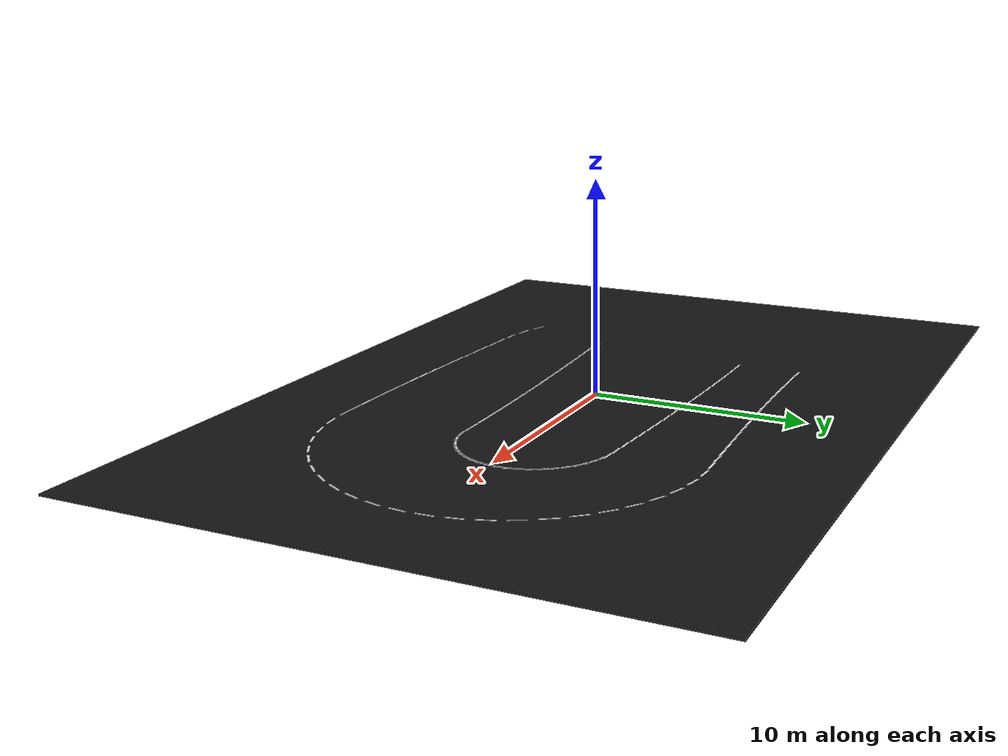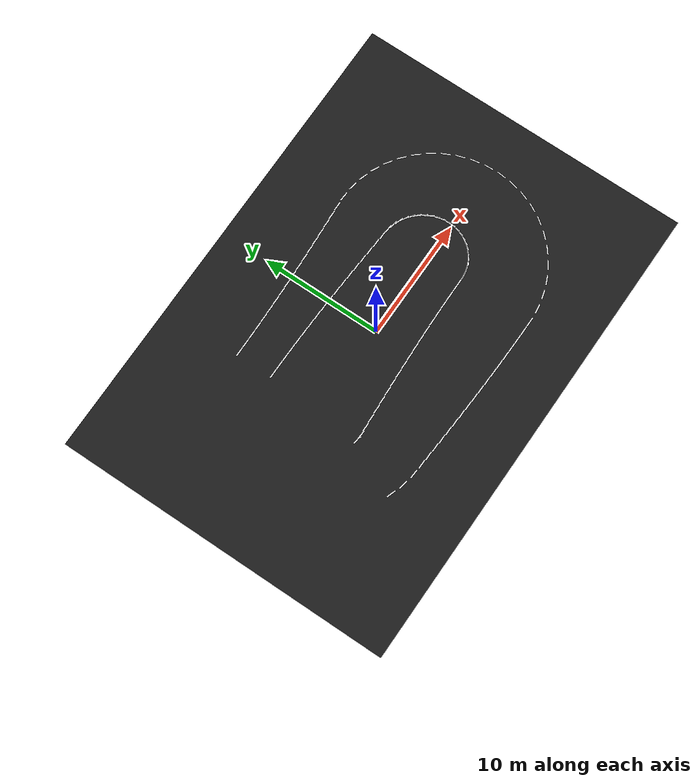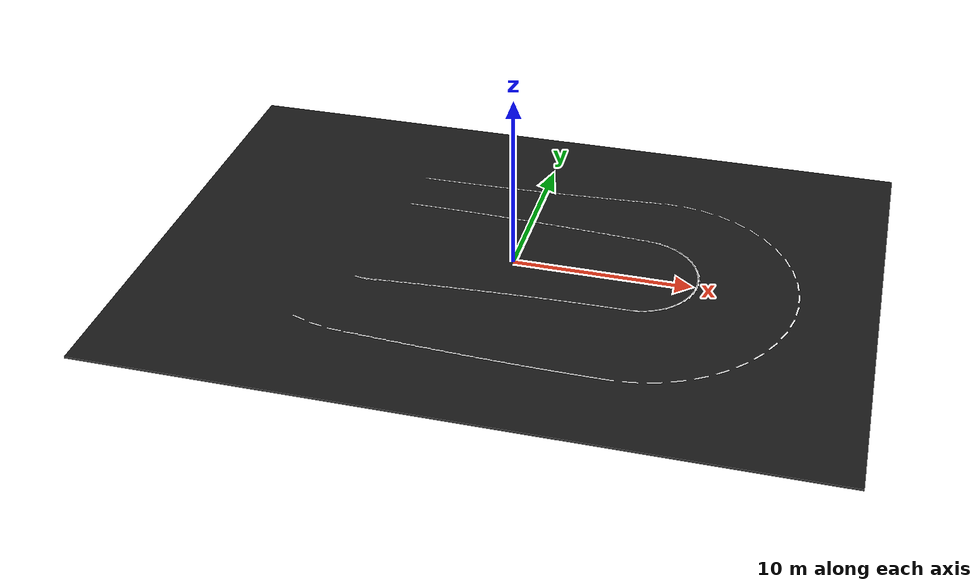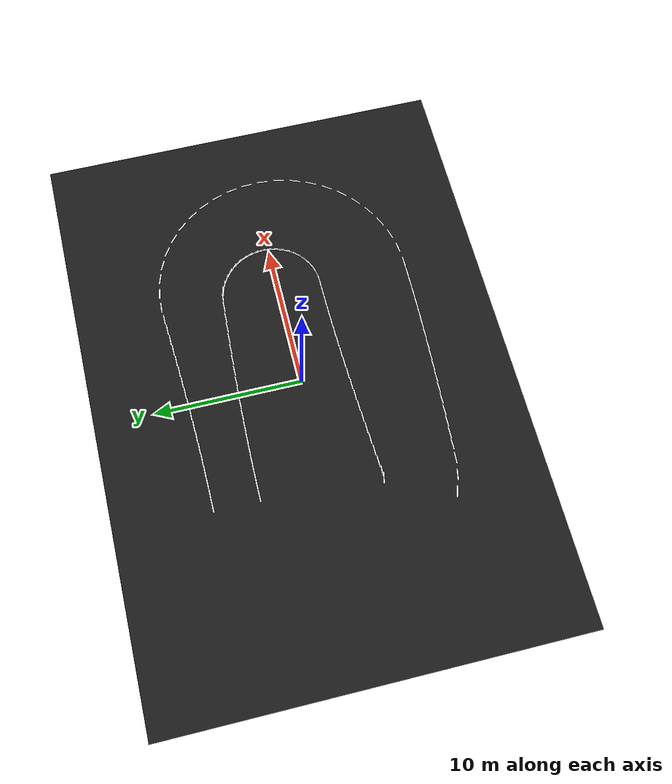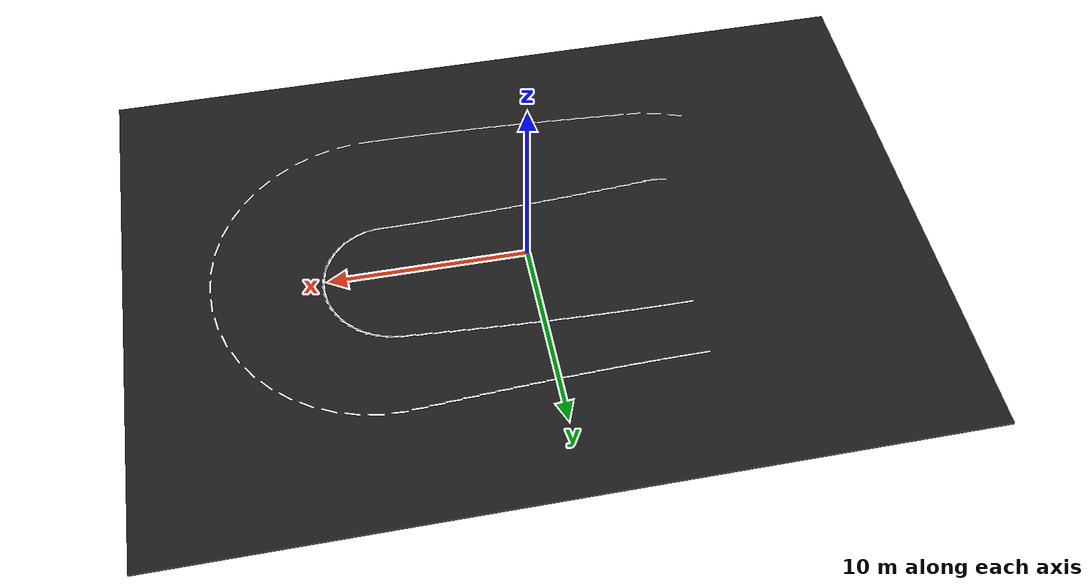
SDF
<sdf version="1.9">
 <world name="test_world_lane_vary">
  <physics name="1ms" type="ignored">
   <max_step_size>0.001</max_step_size>
   <real_time_factor>1.0</real_time_factor>
  </physics>
  <plugin filename="libgz-sim8-physics-system.so" name="gz::sim::systems::Physics"/>
  <plugin filename="gz-sim-sensors-system" name="gz::sim::systems::Sensors"/>
  <plugin filename="libgz-sim8-scene-broadcaster-system.so" name="gz::sim::systems::SceneBroadcaster"/>
  <include><uri>https://fuel.gazebosim.org/1.0/openrobotics/models/Sun</uri></include>
  <model name="oval_track_small">
   <static>true</static>
   <link name="track_link">
    <collision name="track_collision">
     <pose>0 0 -0.05 0 0 0</pose>
     <geometry><box><size>40 28 0.10</size></box></geometry>
     <surface><friction><ode><mu>1.2</mu><mu2>1.2</mu2></ode></friction></surface>
    </collision>
    <visual name="track_visual">
     <pose>0 0 -0.05 0 0 0</pose>
     <geometry><box><size>40 28 0.10</size></box></geometry>
     <material>
      <ambient>0.08 0.08 0.08 1</ambient>
      <diffuse>0.10 0.10 0.10 1</diffuse>
      <specular>0.02 0.02 0.02 1</specular>
     </material>
    </visual>
    <visual name="outer_lane_000">
     <pose>-7.0000 7.5240 0.0010 0 0 0.000000</pose>
     <geometry><box><size>0.8000 0.1000 0.0050</size></box></geometry>
     <material><ambient>1 1 1 1</ambient><diffuse>1 1 1 1</diffuse><specular>0.1 0.1 0.1 1</specular></material>
    </visual>
    <visual name="inner_lane_000">
     <pose>-7.0000 4.4760 0.0010 0 0 0.000000</pose>
     <geometry><box><size>0.8000 0.1000 0.0050</size></box></geometry>
     <material><ambient>1 1 1 1</ambient><diffuse>1 1 1 1</diffuse><specular>0.1 0.1 0.1 1</specular></material>
    </visual>
    <visual name="outer_lane_001">
     <pose>-6.2000 7.5262 0.0010 0 0 0.000000</pose>
     <geometry><box><size>0.8000 0.1000 0.0050</size></box></geometry>
     <material><ambient>1 1 1 1</ambient><diffuse>1 1 1 1</diffuse><specular>0.1 0.1 0.1 1</specular></material>
    </visual>
    <visual name="inner_lane_001">
     <pose>-6.2000 4.4738 0.0010 0 0 0.000000</pose>
     <geometry><box><size>0.8000 0.1000 0.0050</size></box></geometry>
     <material><ambient>1 1 1 1</ambient><diffuse>1 1 1 1</diffuse><specular>0.1 0.1 0.1 1</specular></material>
    </visual>
    <visual name="outer_lane_002">
     <pose>-5.4000 7.5329 0.0010 0 0 0.000000</pose>
     <geometry><box><size>0.8000 0.1000 0.0050</size></box></geometry>
     <material><ambient>1 1 1 1</ambient><diffuse>1 1 1 1</diffuse><specular>0.1 0.1 0.1 1</specular></material>
    </visual>
    <visual name="inner_lane_002">
     <pose>-5.4000 4.4671 0.0010 0 0 0.000000</pose>
     <geometry><box><size>0.8000 0.1000 0.0050</size></box></geometry>
     <material><ambient>1 1 1 1</ambient><diffuse>1 1 1 1</diffuse><specular>0.1 0.1 0.1 1</specular></material>
    </visual>
    <visual name="outer_lane_003">
     <pose>-4.6000 7.5440 0.0010 0 0 0.000000</pose>
     <geometry><box><size>0.8000 0.1000 0.0050</size></box></geometry>
     <material><ambient>1 1 1 1</ambient><diffuse>1 1 1 1</diffuse><specular>0.1 0.1 0.1 1</specular></material>
    </visual>
    <visual name="inner_lane_003">
     <pose>-4.6000 4.4560 0.0010 0 0 0.000000</pose>
     <geometry><box><size>0.8000 0.1000 0.0050</size></box></geometry>
     <material><ambient>1 1 1 1</ambient><diffuse>1 1 1 1</diffuse><specular>0.1 0.1 0.1 1</specular></material>
    </visual>
    <visual name="outer_lane_004">
     <pose>-3.8000 7.5594 0.0010 0 0 0.000000</pose>
     <geometry><box><size>0.8000 0.1000 0.0050</size></box></geometry>
     <material><ambient>1 1 1 1</ambient><diffuse>1 1 1 1</diffuse><specular>0.1 0.1 0.1 1</specular></material>
    </visual>
    <visual name="inner_lane_004">
     <pose>-3.8000 4.4406 0.0010 0 0 0.000000</pose>
     <geometry><box><size>0.8000 0.1000 0.0050</size></box></geometry>
     <material><ambient>1 1 1 1</ambient><diffuse>1 1 1 1</diffuse><specular>0.1 0.1 0.1 1</specular></material>
    </visual>
    <visual name="outer_lane_005">
     <pose>-3.0000 7.5791 0.0010 0 0 0.000000</pose>
     <geometry><box><size>0.8000 0.1000 0.0050</size></box></geometry>
     <material><ambient>1 1 1 1</ambient><diffuse>1 1 1 1</diffuse><specular>0.1 0.1 0.1 1</specular></material>
    </visual>
    <visual name="inner_lane_005">
     <pose>-3.0000 4.4209 0.0010 0 0 0.000000</pose>
     <geometry><box><size>0.8000 0.1000 0.0050</size></box></geometry>
     <material><ambient>1 1 1 1</ambient><diffuse>1 1 1 1</diffuse><specular>0.1 0.1 0.1 1</specular></material>
    </visual>
    <visual name="outer_lane_006">
     <pose>-2.2000 7.6029 0.0010 0 0 0.000000</pose>
     <geometry><box><size>0.8000 0.1000 0.0050</size></box></geometry>
     <material><ambient>1 1 1 1</ambient><diffuse>1 1 1 1</diffuse><specular>0.1 0.1 0.1 1</specular></material>
    </visual>
    <visual name="inner_lane_006">
     <pose>-2.2000 4.3971 0.0010 0 0 0.000000</pose>
     <geometry><box><size>0.8000 0.1000 0.0050</size></box></geometry>
     <material><ambient>1 1 1 1</ambient><diffuse>1 1 1 1</diffuse><specular>0.1 0.1 0.1 1</specular></material>
    </visual>
    <visual name="outer_lane_007">
     <pose>-1.4000 7.6307 0.0010 0 0 0.000000</pose>
     <geometry><box><size>0.8000 0.1000 0.0050</size></box></geometry>
     <material><ambient>1 1 1 1</ambient><diffuse>1 1 1 1</diffuse><specular>0.1 0.1 0.1 1</specular></material>
    </visual>
    <visual name="inner_lane_007">
     <pose>-1.4000 4.3693 0.0010 0 0 0.000000</pose>
     <geometry><box><size>0.8000 0.1000 0.0050</size></box></geometry>
     <material><ambient>1 1 1 1</ambient><diffuse>1 1 1 1</diffuse><specular>0.1 0.1 0.1 1</specular></material>
    </visual>
    <visual name="outer_lane_008">
     <pose>-0.6000 7.6623 0.0010 0 0 0.000000</pose>
     <geometry><box><size>0.8000 0.1000 0.0050</size></box></geometry>
     <material><ambient>1 1 1 1</ambient><diffuse>1 1 1 1</diffuse><specular>0.1 0.1 0.1 1</specular></material>
    </visual>
    <visual name="inner_lane_008">
     <pose>-0.6000 4.3377 0.0010 0 0 0.000000</pose>
     <geometry><box><size>0.8000 0.1000 0.0050</size></box></geometry>
     <material><ambient>1 1 1 1</ambient><diffuse>1 1 1 1</diffuse><specular>0.1 0.1 0.1 1</specular></material>
    </visual>
    <visual name="outer_lane_009">
     <pose>0.2000 7.6976 0.0010 0 0 0.000000</pose>
     <geometry><box><size>0.8000 0.1000 0.0050</size></box></geometry>
     <material><ambient>1 1 1 1</ambient><diffuse>1 1 1 1</diffuse><specular>0.1 0.1 0.1 1</specular></material>
    </visual>
    <visual name="inner_lane_009">
     <pose>0.2000 4.3024 0.0010 0 0 0.000000</pose>
     <geometry><box><size>0.8000 0.1000 0.0050</size></box></geometry>
     <material><ambient>1 1 1 1</ambient><diffuse>1 1 1 1</diffuse><specular>0.1 0.1 0.1 1</specular></material>
    </visual>
    <visual name="outer_lane_010">
     <pose>1.0000 7.7364 0.0010 0 0 0.000000</pose>
     <geometry><box><size>0.8000 0.1000 0.0050</size></box></geometry>
     <material><ambient>1 1 1 1</ambient><diffuse>1 1 1 1</diffuse><specular>0.1 0.1 0.1 1</specular></material>
    </visual>
    <visual name="inner_lane_010">
     <pose>1.0000 4.2636 0.0010 0 0 0.000000</pose>
     <geometry><box><size>0.8000 0.1000 0.0050</size></box></geometry>
     <material><ambient>1 1 1 1</ambient><diffuse>1 1 1 1</diffuse><specular>0.1 0.1 0.1 1</specular></material>
    </visual>
    <visual name="outer_lane_011">
     <pose>1.8000 7.7783 0.0010 0 0 0.000000</pose>
     <geometry><box><size>0.8000 0.1000 0.0050</size></box></geometry>
     <material><ambient>1 1 1 1</ambient><diffuse>1 1 1 1</diffuse><specular>0.1 0.1 0.1 1</specular></material>
    </visual>
    <visual name="inner_lane_011">
     <pose>1.8000 4.2217 0.0010 0 0 0.000000</pose>
     <geometry><box><size>0.8000 0.1000 0.0050</size></box></geometry>
     <material><ambient>1 1 1 1</ambient><diffuse>1 1 1 1</diffuse><specular>0.1 0.1 0.1 1</specular></material>
    </visual>
    <visual name="outer_lane_012">
     <pose>2.6000 7.8232 0.0010 0 0 0.000000</pose>
     <geometry><box><size>0.8000 0.1000 0.0050</size></box></geometry>
     <material><ambient>1 1 1 1</ambient><diffuse>1 1 1 1</diffuse><specular>0.1 0.1 0.1 1</specular></material>
    </visual>
    <visual name="inner_lane_012">
     <pose>2.6000 4.1768 0.0010 0 0 0.000000</pose>
     <geometry><box><size>0.8000 0.1000 0.0050</size></box></geometry>
     <material><ambient>1 1 1 1</ambient><diffuse>1 1 1 1</diffuse><specular>0.1 0.1 0.1 1</specular></material>
    </visual>
    <visual name="outer_lane_013">
     <pose>3.4000 7.8708 0.0010 0 0 0.000000</pose>
     <geometry><box><size>0.8000 0.1000 0.0050</size></box></geometry>
     <material><ambient>1 1 1 1</ambient><diffuse>1 1 1 1</diffuse><specular>0.1 0.1 0.1 1</specular></material>
    </visual>
    <visual name="inner_lane_013">
     <pose>3.4000 4.1292 0.0010 0 0 0.000000</pose>
     <geometry><box><size>0.8000 0.1000 0.0050</size></box></geometry>
     <material><ambient>1 1 1 1</ambient><diffuse>1 1 1 1</diffuse><specular>0.1 0.1 0.1 1</specular></material>
    </visual>
    <visual name="outer_lane_014">
     <pose>4.2000 7.9209 0.0010 0 0 0.000000</pose>
     <geometry><box><size>0.8000 0.1000 0.0050</size></box></geometry>
     <material><ambient>1 1 1 1</ambient><diffuse>1 1 1 1</diffuse><specular>0.1 0.1 0.1 1</specular></material>
    </visual>
    <visual name="inner_lane_014">
     <pose>4.2000 4.0791 0.0010 0 0 0.000000</pose>
     <geometry><box><size>0.8000 0.1000 0.0050</size></box></geometry>
     <material><ambient>1 1 1 1</ambient><diffuse>1 1 1 1</diffuse><specular>0.1 0.1 0.1 1</specular></material>
    </visual>
    <visual name="outer_lane_015">
     <pose>5.0000 7.9731 0.0010 0 0 0.000000</pose>
     <geometry><box><size>0.8000 0.1000 0.0050</size></box></geometry>
     <material><ambient>1 1 1 1</ambient><diffuse>1 1 1 1</diffuse><specular>0.1 0.1 0.1 1</specular></material>
    </visual>
    <visual name="inner_lane_015">
     <pose>5.0000 4.0269 0.0010 0 0 0.000000</pose>
     <geometry><box><size>0.8000 0.1000 0.0050</size></box></geometry>
     <material><ambient>1 1 1 1</ambient><diffuse>1 1 1 1</diffuse><specular>0.1 0.1 0.1 1</specular></material>
    </visual>
    <visual name="outer_lane_016">
     <pose>5.8000 8.0271 0.0010 0 0 0.000000</pose>
     <geometry><box><size>0.8000 0.1000 0.0050</size></box></geometry>
     <material><ambient>1 1 1 1</ambient><diffuse>1 1 1 1</diffuse><specular>0.1 0.1 0.1 1</specular></material>
    </visual>
    <visual name="inner_lane_016">
     <pose>5.8000 3.9729 0.0010 0 0 0.000000</pose>
     <geometry><box><size>0.8000 0.1000 0.0050</size></box></geometry>
     <material><ambient>1 1 1 1</ambient><diffuse>1 1 1 1</diffuse><specular>0.1 0.1 0.1 1</specular></material>
    </visual>
    <visual name="outer_lane_017">
     <pose>6.6000 8.0826 0.0010 0 0 0.000000</pose>
     <geometry><box><size>0.8000 0.1000 0.0050</size></box></geometry>
     <material><ambient>1 1 1 1</ambient><diffuse>1 1 1 1</diffuse><specular>0.1 0.1 0.1 1</specular></material>
    </visual>
    <visual name="inner_lane_017">
     <pose>6.6000 3.9174 0.0010 0 0 0.000000</pose>
     <geometry><box><size>0.8000 0.1000 0.0050</size></box></geometry>
     <material><ambient>1 1 1 1</ambient><diffuse>1 1 1 1</diffuse><specular>0.1 0.1 0.1 1</specular></material>
    </visual>
    <visual name="outer_lane_018">
     <pose>7.5422 8.1213 0.0010 0 0 -0.066667</pose>
     <geometry><box><size>0.8000 0.1000 0.0050</size></box></geometry>
     <material><ambient>1 1 1 1</ambient><diffuse>1 1 1 1</diffuse><specular>0.1 0.1 0.1 1</specular></material>
    </visual>
    <visual name="inner_lane_018">
     <pose>7.2572 3.8521 0.0010 0 0 -0.066667</pose>
     <geometry><box><size>0.8000 0.1000 0.0050</size></box></geometry>
     <material><ambient>1 1 1 1</ambient><diffuse>1 1 1 1</diffuse><specular>0.1 0.1 0.1 1</specular></material>
    </visual>
    <visual name="outer_lane_019">
     <pose>8.6285 8.0336 0.0010 0 0 -0.200000</pose>
     <geometry><box><size>0.8000 0.1000 0.0050</size></box></geometry>
     <material><ambient>1 1 1 1</ambient><diffuse>1 1 1 1</diffuse><specular>0.1 0.1 0.1 1</specular></material>
    </visual>
    <visual name="inner_lane_019">
     <pose>7.7555 3.7272 0.0010 0 0 -0.200000</pose>
     <geometry><box><size>0.8000 0.1000 0.0050</size></box></geometry>
     <material><ambient>1 1 1 1</ambient><diffuse>1 1 1 1</diffuse><specular>0.1 0.1 0.1 1</specular></material>
    </visual>
    <visual name="outer_lane_020">
     <pose>9.7010 7.8007 0.0010 0 0 -0.333333</pose>
     <geometry><box><size>0.8000 0.1000 0.0050</size></box></geometry>
     <material><ambient>1 1 1 1</ambient><diffuse>1 1 1 1</diffuse><specular>0.1 0.1 0.1 1</specular></material>
    </visual>
    <visual name="inner_lane_020">
     <pose>8.2253 3.5388 0.0010 0 0 -0.333333</pose>
     <geometry><box><size>0.8000 0.1000 0.0050</size></box></geometry>
     <material><ambient>1 1 1 1</ambient><diffuse>1 1 1 1</diffuse><specular>0.1 0.1 0.1 1</specular></material>
    </visual>
    <visual name="outer_lane_021">
     <pose>10.7403 7.4244 0.0010 0 0 -0.466667</pose>
     <geometry><box><size>0.8000 0.1000 0.0050</size></box></geometry>
     <material><ambient>1 1 1 1</ambient><diffuse>1 1 1 1</diffuse><specular>0.1 0.1 0.1 1</specular></material>
    </visual>
    <visual name="inner_lane_021">
     <pose>8.6587 3.2925 0.0010 0 0 -0.466667</pose>
     <geometry><box><size>0.8000 0.1000 0.0050</size></box></geometry>
     <material><ambient>1 1 1 1</ambient><diffuse>1 1 1 1</diffuse><specular>0.1 0.1 0.1 1</specular></material>
    </visual>
    <visual name="outer_lane_022">
     <pose>11.7269 6.9093 0.0010 0 0 -0.600000</pose>
     <geometry><box><size>0.8000 0.1000 0.0050</size></box></geometry>
     <material><ambient>1 1 1 1</ambient><diffuse>1 1 1 1</diffuse><specular>0.1 0.1 0.1 1</specular></material>
    </visual>
    <visual name="inner_lane_022">
     <pose>9.0488 2.9948 0.0010 0 0 -0.600000</pose>
     <geometry><box><size>0.8000 0.1000 0.0050</size></box></geometry>
     <material><ambient>1 1 1 1</ambient><diffuse>1 1 1 1</diffuse><specular>0.1 0.1 0.1 1</specular></material>
    </visual>
    <visual name="outer_lane_023">
     <pose>12.6420 6.2624 0.0010 0 0 -0.733333</pose>
     <geometry><box><size>0.8000 0.1000 0.0050</size></box></geometry>
     <material><ambient>1 1 1 1</ambient><diffuse>1 1 1 1</diffuse><specular>0.1 0.1 0.1 1</specular></material>
    </visual>
    <visual name="inner_lane_023">
     <pose>9.3902 2.6530 0.0010 0 0 -0.733333</pose>
     <geometry><box><size>0.8000 0.1000 0.0050</size></box></geometry>
     <material><ambient>1 1 1 1</ambient><diffuse>1 1 1 1</diffuse><specular>0.1 0.1 0.1 1</specular></material>
    </visual>
    <visual name="outer_lane_024">
     <pose>13.4677 5.4935 0.0010 0 0 -0.866667</pose>
     <geometry><box><size>0.8000 0.1000 0.0050</size></box></geometry>
     <material><ambient>1 1 1 1</ambient><diffuse>1 1 1 1</diffuse><specular>0.1 0.1 0.1 1</specular></material>
    </visual>
    <visual name="inner_lane_024">
     <pose>9.6784 2.2749 0.0010 0 0 -0.866667</pose>
     <geometry><box><size>0.8000 0.1000 0.0050</size></box></geometry>
     <material><ambient>1 1 1 1</ambient><diffuse>1 1 1 1</diffuse><specular>0.1 0.1 0.1 1</specular></material>
    </visual>
    <visual name="outer_lane_025">
     <pose>14.1874 4.6150 0.0010 0 0 -1.000000</pose>
     <geometry><box><size>0.8000 0.1000 0.0050</size></box></geometry>
     <material><ambient>1 1 1 1</ambient><diffuse>1 1 1 1</diffuse><specular>0.1 0.1 0.1 1</specular></material>
    </visual>
    <visual name="inner_lane_025">
     <pose>9.9102 1.8686 0.0010 0 0 -1.000000</pose>
     <geometry><box><size>0.8000 0.1000 0.0050</size></box></geometry>
     <material><ambient>1 1 1 1</ambient><diffuse>1 1 1 1</diffuse><specular>0.1 0.1 0.1 1</specular></material>
    </visual>
    <visual name="outer_lane_026">
     <pose>14.7862 3.6415 0.0010 0 0 -1.133333</pose>
     <geometry><box><size>0.8000 0.1000 0.0050</size></box></geometry>
     <material><ambient>1 1 1 1</ambient><diffuse>1 1 1 1</diffuse><specular>0.1 0.1 0.1 1</specular></material>
    </visual>
    <visual name="inner_lane_026">
     <pose>10.0838 1.4422 0.0010 0 0 -1.133333</pose>
     <geometry><box><size>0.8000 0.1000 0.0050</size></box></geometry>
     <material><ambient>1 1 1 1</ambient><diffuse>1 1 1 1</diffuse><specular>0.1 0.1 0.1 1</specular></material>
    </visual>
    <visual name="outer_lane_027">
     <pose>15.2511 2.5897 0.0010 0 0 -1.266667</pose>
     <geometry><box><size>0.8000 0.1000 0.0050</size></box></geometry>
     <material><ambient>1 1 1 1</ambient><diffuse>1 1 1 1</diffuse><specular>0.1 0.1 0.1 1</specular></material>
    </visual>
    <visual name="inner_lane_027">
     <pose>10.1982 1.0038 0.0010 0 0 -1.266667</pose>
     <geometry><box><size>0.8000 0.1000 0.0050</size></box></geometry>
     <material><ambient>1 1 1 1</ambient><diffuse>1 1 1 1</diffuse><specular>0.1 0.1 0.1 1</specular></material>
    </visual>
    <visual name="outer_lane_028">
     <pose>15.5716 1.4784 0.0010 0 0 -1.400000</pose>
     <geometry><box><size>0.8000 0.1000 0.0050</size></box></geometry>
     <material><ambient>1 1 1 1</ambient><diffuse>1 1 1 1</diffuse><specular>0.1 0.1 0.1 1</specular></material>
    </visual>
    <visual name="inner_lane_028">
     <pose>10.2538 0.5612 0.0010 0 0 -1.400000</pose>
     <geometry><box><size>0.8000 0.1000 0.0050</size></box></geometry>
     <material><ambient>1 1 1 1</ambient><diffuse>1 1 1 1</diffuse><specular>0.1 0.1 0.1 1</specular></material>
    </visual>
    <visual name="outer_lane_029">
     <pose>15.7398 0.3276 0.0010 0 0 -1.533333</pose>
     <geometry><box><size>0.8000 0.1000 0.0050</size></box></geometry>
     <material><ambient>1 1 1 1</ambient><diffuse>1 1 1 1</diffuse><specular>0.1 0.1 0.1 1</specular></material>
    </visual>
    <visual name="inner_lane_029">
     <pose>10.2518 0.1219 0.0010 0 0 -1.533333</pose>
     <geometry><box><size>0.8000 0.1000 0.0050</size></box></geometry>
     <material><ambient>1 1 1 1</ambient><diffuse>1 1 1 1</diffuse><specular>0.1 0.1 0.1 1</specular></material>
    </visual>
    <visual name="outer_lane_030">
     <pose>15.7506 -0.8415 0.0010 0 0 -1.666667</pose>
     <geometry><box><size>0.8000 0.1000 0.0050</size></box></geometry>
     <material><ambient>1 1 1 1</ambient><diffuse>1 1 1 1</diffuse><specular>0.1 0.1 0.1 1</specular></material>
    </visual>
    <visual name="inner_lane_030">
     <pose>10.1943 -0.3072 0.0010 0 0 -1.666667</pose>
     <geometry><box><size>0.8000 0.1000 0.0050</size></box></geometry>
     <material><ambient>1 1 1 1</ambient><diffuse>1 1 1 1</diffuse><specular>0.1 0.1 0.1 1</specular></material>
    </visual>
    <visual name="outer_lane_031">
     <pose>15.6021 -2.0069 0.0010 0 0 -1.800000</pose>
     <geometry><box><size>0.8000 0.1000 0.0050</size></box></geometry>
     <material><ambient>1 1 1 1</ambient><diffuse>1 1 1 1</diffuse><specular>0.1 0.1 0.1 1</specular></material>
    </visual>
    <visual name="inner_lane_031">
     <pose>10.0840 -0.7195 0.0010 0 0 -1.800000</pose>
     <geometry><box><size>0.8000 0.1000 0.0050</size></box></geometry>
     <material><ambient>1 1 1 1</ambient><diffuse>1 1 1 1</diffuse><specular>0.1 0.1 0.1 1</specular></material>
    </visual>
    <visual name="outer_lane_032">
     <pose>15.2954 -3.1465 0.0010 0 0 -1.933333</pose>
     <geometry><box><size>0.8000 0.1000 0.0050</size></box></geometry>
     <material><ambient>1 1 1 1</ambient><diffuse>1 1 1 1</diffuse><specular>0.1 0.1 0.1 1</specular></material>
    </visual>
    <visual name="inner_lane_032">
     <pose>9.9246 -1.1093 0.0010 0 0 -1.933333</pose>
     <geometry><box><size>0.8000 0.1000 0.0050</size></box></geometry>
     <material><ambient>1 1 1 1</ambient><diffuse>1 1 1 1</diffuse><specular>0.1 0.1 0.1 1</specular></material>
    </visual>
    <visual name="outer_lane_033">
     <pose>14.8347 -4.2382 0.0010 0 0 -2.066667</pose>
     <geometry><box><size>0.8000 0.1000 0.0050</size></box></geometry>
     <material><ambient>1 1 1 1</ambient><diffuse>1 1 1 1</diffuse><specular>0.1 0.1 0.1 1</specular></material>
    </visual>
    <visual name="inner_lane_033">
     <pose>9.7199 -1.4714 0.0010 0 0 -2.066667</pose>
     <geometry><box><size>0.8000 0.1000 0.0050</size></box></geometry>
     <material><ambient>1 1 1 1</ambient><diffuse>1 1 1 1</diffuse><specular>0.1 0.1 0.1 1</specular></material>
    </visual>
    <visual name="outer_lane_034">
     <pose>14.2275 -5.2609 0.0010 0 0 -2.200000</pose>
     <geometry><box><size>0.8000 0.1000 0.0050</size></box></geometry>
     <material><ambient>1 1 1 1</ambient><diffuse>1 1 1 1</diffuse><specular>0.1 0.1 0.1 1</specular></material>
    </visual>
    <visual name="inner_lane_034">
     <pose>9.4744 -1.8011 0.0010 0 0 -2.200000</pose>
     <geometry><box><size>0.8000 0.1000 0.0050</size></box></geometry>
     <material><ambient>1 1 1 1</ambient><diffuse>1 1 1 1</diffuse><specular>0.1 0.1 0.1 1</specular></material>
    </visual>
    <visual name="outer_lane_035">
     <pose>13.4843 -6.1944 0.0010 0 0 -2.333333</pose>
     <geometry><box><size>0.8000 0.1000 0.0050</size></box></geometry>
     <material><ambient>1 1 1 1</ambient><diffuse>1 1 1 1</diffuse><specular>0.1 0.1 0.1 1</specular></material>
    </visual>
    <visual name="inner_lane_035">
     <pose>9.1928 -2.0947 0.0010 0 0 -2.333333</pose>
     <geometry><box><size>0.8000 0.1000 0.0050</size></box></geometry>
     <material><ambient>1 1 1 1</ambient><diffuse>1 1 1 1</diffuse><specular>0.1 0.1 0.1 1</specular></material>
    </visual>
    <visual name="outer_lane_036">
     <pose>12.6183 -7.0202 0.0010 0 0 -2.466667</pose>
     <geometry><box><size>0.8000 0.1000 0.0050</size></box></geometry>
     <material><ambient>1 1 1 1</ambient><diffuse>1 1 1 1</diffuse><specular>0.1 0.1 0.1 1</specular></material>
    </visual>
    <visual name="inner_lane_036">
     <pose>8.8798 -2.3488 0.0010 0 0 -2.466667</pose>
     <geometry><box><size>0.8000 0.1000 0.0050</size></box></geometry>
     <material><ambient>1 1 1 1</ambient><diffuse>1 1 1 1</diffuse><specular>0.1 0.1 0.1 1</specular></material>
    </visual>
    <visual name="outer_lane_037">
     <pose>11.6454 -7.7219 0.0010 0 0 -2.600000</pose>
     <geometry><box><size>0.8000 0.1000 0.0050</size></box></geometry>
     <material><ambient>1 1 1 1</ambient><diffuse>1 1 1 1</diffuse><specular>0.1 0.1 0.1 1</specular></material>
    </visual>
    <visual name="inner_lane_037">
     <pose>8.5406 -2.5608 0.0010 0 0 -2.600000</pose>
     <geometry><box><size>0.8000 0.1000 0.0050</size></box></geometry>
     <material><ambient>1 1 1 1</ambient><diffuse>1 1 1 1</diffuse><specular>0.1 0.1 0.1 1</specular></material>
    </visual>
    <visual name="outer_lane_038">
     <pose>10.5839 -8.2853 0.0010 0 0 -2.733333</pose>
     <geometry><box><size>0.8000 0.1000 0.0050</size></box></geometry>
     <material><ambient>1 1 1 1</ambient><diffuse>1 1 1 1</diffuse><specular>0.1 0.1 0.1 1</specular></material>
    </visual>
    <visual name="inner_lane_038">
     <pose>8.1802 -2.7285 0.0010 0 0 -2.733333</pose>
     <geometry><box><size>0.8000 0.1000 0.0050</size></box></geometry>
     <material><ambient>1 1 1 1</ambient><diffuse>1 1 1 1</diffuse><specular>0.1 0.1 0.1 1</specular></material>
    </visual>
    <visual name="outer_lane_039">
     <pose>9.4537 -8.6991 0.0010 0 0 -2.866667</pose>
     <geometry><box><size>0.8000 0.1000 0.0050</size></box></geometry>
     <material><ambient>1 1 1 1</ambient><diffuse>1 1 1 1</diffuse><specular>0.1 0.1 0.1 1</specular></material>
    </visual>
    <visual name="inner_lane_039">
     <pose>7.8040 -2.8502 0.0010 0 0 -2.866667</pose>
     <geometry><box><size>0.8000 0.1000 0.0050</size></box></geometry>
     <material><ambient>1 1 1 1</ambient><diffuse>1 1 1 1</diffuse><specular>0.1 0.1 0.1 1</specular></material>
    </visual>
    <visual name="outer_lane_040">
     <pose>8.2765 -8.9550 0.0010 0 0 -3.000000</pose>
     <geometry><box><size>0.8000 0.1000 0.0050</size></box></geometry>
     <material><ambient>1 1 1 1</ambient><diffuse>1 1 1 1</diffuse><specular>0.1 0.1 0.1 1</specular></material>
    </visual>
    <visual name="inner_lane_040">
     <pose>7.4169 -2.9249 0.0010 0 0 -3.000000</pose>
     <geometry><box><size>0.8000 0.1000 0.0050</size></box></geometry>
     <material><ambient>1 1 1 1</ambient><diffuse>1 1 1 1</diffuse><specular>0.1 0.1 0.1 1</specular></material>
    </visual>
    <visual name="outer_lane_041">
     <pose>7.0747 -9.0477 0.0010 0 0 -3.133333</pose>
     <geometry><box><size>0.8000 0.1000 0.0050</size></box></geometry>
     <material><ambient>1 1 1 1</ambient><diffuse>1 1 1 1</diffuse><specular>0.1 0.1 0.1 1</specular></material>
    </visual>
    <visual name="inner_lane_041">
     <pose>7.0244 -2.9519 0.0010 0 0 -3.133333</pose>
     <geometry><box><size>0.8000 0.1000 0.0050</size></box></geometry>
     <material><ambient>1 1 1 1</ambient><diffuse>1 1 1 1</diffuse><specular>0.1 0.1 0.1 1</specular></material>
    </visual>
    <visual name="outer_lane_042">
     <pose>6.2496 -9.0460 0.0010 0 0 3.141593</pose>
     <geometry><box><size>0.8000 0.1000 0.0050</size></box></geometry>
     <material><ambient>1 1 1 1</ambient><diffuse>1 1 1 1</diffuse><specular>0.1 0.1 0.1 1</specular></material>
    </visual>
    <visual name="inner_lane_042">
     <pose>6.2496 -2.9540 0.0010 0 0 3.141593</pose>
     <geometry><box><size>0.8000 0.1000 0.0050</size></box></geometry>
     <material><ambient>1 1 1 1</ambient><diffuse>1 1 1 1</diffuse><specular>0.1 0.1 0.1 1</specular></material>
    </visual>
    <visual name="outer_lane_043">
     <pose>5.4496 -9.0396 0.0010 0 0 3.141593</pose>
     <geometry><box><size>0.8000 0.1000 0.0050</size></box></geometry>
     <material><ambient>1 1 1 1</ambient><diffuse>1 1 1 1</diffuse><specular>0.1 0.1 0.1 1</specular></material>
    </visual>
    <visual name="inner_lane_043">
     <pose>5.4496 -2.9604 0.0010 0 0 3.141593</pose>
     <geometry><box><size>0.8000 0.1000 0.0050</size></box></geometry>
     <material><ambient>1 1 1 1</ambient><diffuse>1 1 1 1</diffuse><specular>0.1 0.1 0.1 1</specular></material>
    </visual>
    <visual name="outer_lane_044">
     <pose>4.6496 -9.0288 0.0010 0 0 3.141593</pose>
     <geometry><box><size>0.8000 0.1000 0.0050</size></box></geometry>
     <material><ambient>1 1 1 1</ambient><diffuse>1 1 1 1</diffuse><specular>0.1 0.1 0.1 1</specular></material>
    </visual>
    <visual name="inner_lane_044">
     <pose>4.6496 -2.9712 0.0010 0 0 3.141593</pose>
     <geometry><box><size>0.8000 0.1000 0.0050</size></box></geometry>
     <material><ambient>1 1 1 1</ambient><diffuse>1 1 1 1</diffuse><specular>0.1 0.1 0.1 1</specular></material>
    </visual>
    <visual name="outer_lane_045">
     <pose>3.8496 -9.0137 0.0010 0 0 3.141593</pose>
     <geometry><box><size>0.8000 0.1000 0.0050</size></box></geometry>
     <material><ambient>1 1 1 1</ambient><diffuse>1 1 1 1</diffuse><specular>0.1 0.1 0.1 1</specular></material>
    </visual>
    <visual name="inner_lane_045">
     <pose>3.8496 -2.9863 0.0010 0 0 3.141593</pose>
     <geometry><box><size>0.8000 0.1000 0.0050</size></box></geometry>
     <material><ambient>1 1 1 1</ambient><diffuse>1 1 1 1</diffuse><specular>0.1 0.1 0.1 1</specular></material>
    </visual>
    <visual name="outer_lane_046">
     <pose>3.0496 -8.9943 0.0010 0 0 3.141593</pose>
     <geometry><box><size>0.8000 0.1000 0.0050</size></box></geometry>
     <material><ambient>1 1 1 1</ambient><diffuse>1 1 1 1</diffuse><specular>0.1 0.1 0.1 1</specular></material>
    </visual>
    <visual name="inner_lane_046">
     <pose>3.0496 -3.0057 0.0010 0 0 3.141593</pose>
     <geometry><box><size>0.8000 0.1000 0.0050</size></box></geometry>
     <material><ambient>1 1 1 1</ambient><diffuse>1 1 1 1</diffuse><specular>0.1 0.1 0.1 1</specular></material>
    </visual>
    <visual name="outer_lane_047">
     <pose>2.2496 -8.9707 0.0010 0 0 3.141593</pose>
     <geometry><box><size>0.8000 0.1000 0.0050</size></box></geometry>
     <material><ambient>1 1 1 1</ambient><diffuse>1 1 1 1</diffuse><specular>0.1 0.1 0.1 1</specular></material>
    </visual>
    <visual name="inner_lane_047">
     <pose>2.2496 -3.0293 0.0010 0 0 3.141593</pose>
     <geometry><box><size>0.8000 0.1000 0.0050</size></box></geometry>
     <material><ambient>1 1 1 1</ambient><diffuse>1 1 1 1</diffuse><specular>0.1 0.1 0.1 1</specular></material>
    </visual>
    <visual name="outer_lane_048">
     <pose>1.4496 -8.9431 0.0010 0 0 3.141593</pose>
     <geometry><box><size>0.8000 0.1000 0.0050</size></box></geometry>
     <material><ambient>1 1 1 1</ambient><diffuse>1 1 1 1</diffuse><specular>0.1 0.1 0.1 1</specular></material>
    </visual>
    <visual name="inner_lane_048">
     <pose>1.4496 -3.0569 0.0010 0 0 3.141593</pose>
     <geometry><box><size>0.8000 0.1000 0.0050</size></box></geometry>
     <material><ambient>1 1 1 1</ambient><diffuse>1 1 1 1</diffuse><specular>0.1 0.1 0.1 1</specular></material>
    </visual>
    <visual name="outer_lane_049">
     <pose>0.6496 -8.9117 0.0010 0 0 3.141593</pose>
     <geometry><box><size>0.8000 0.1000 0.0050</size></box></geometry>
     <material><ambient>1 1 1 1</ambient><diffuse>1 1 1 1</diffuse><specular>0.1 0.1 0.1 1</specular></material>
    </visual>
    <visual name="inner_lane_049">
     <pose>0.6496 -3.0883 0.0010 0 0 3.141593</pose>
     <geometry><box><size>0.8000 0.1000 0.0050</size></box></geometry>
     <material><ambient>1 1 1 1</ambient><diffuse>1 1 1 1</diffuse><specular>0.1 0.1 0.1 1</specular></material>
    </visual>
    <visual name="outer_lane_050">
     <pose>-0.1504 -8.8767 0.0010 0 0 3.141593</pose>
     <geometry><box><size>0.8000 0.1000 0.0050</size></box></geometry>
     <material><ambient>1 1 1 1</ambient><diffuse>1 1 1 1</diffuse><specular>0.1 0.1 0.1 1</specular></material>
    </visual>
    <visual name="inner_lane_050">
     <pose>-0.1504 -3.1233 0.0010 0 0 3.141593</pose>
     <geometry><box><size>0.8000 0.1000 0.0050</size></box></geometry>
     <material><ambient>1 1 1 1</ambient><diffuse>1 1 1 1</diffuse><specular>0.1 0.1 0.1 1</specular></material>
    </visual>
    <visual name="outer_lane_051">
     <pose>-0.9504 -8.8381 0.0010 0 0 3.141593</pose>
     <geometry><box><size>0.8000 0.1000 0.0050</size></box></geometry>
     <material><ambient>1 1 1 1</ambient><diffuse>1 1 1 1</diffuse><specular>0.1 0.1 0.1 1</specular></material>
    </visual>
    <visual name="inner_lane_051">
     <pose>-0.9504 -3.1619 0.0010 0 0 3.141593</pose>
     <geometry><box><size>0.8000 0.1000 0.0050</size></box></geometry>
     <material><ambient>1 1 1 1</ambient><diffuse>1 1 1 1</diffuse><specular>0.1 0.1 0.1 1</specular></material>
    </visual>
    <visual name="outer_lane_052">
     <pose>-1.7504 -8.7964 0.0010 0 0 3.141593</pose>
     <geometry><box><size>0.8000 0.1000 0.0050</size></box></geometry>
     <material><ambient>1 1 1 1</ambient><diffuse>1 1 1 1</diffuse><specular>0.1 0.1 0.1 1</specular></material>
    </visual>
    <visual name="inner_lane_052">
     <pose>-1.7504 -3.2036 0.0010 0 0 3.141593</pose>
     <geometry><box><size>0.8000 0.1000 0.0050</size></box></geometry>
     <material><ambient>1 1 1 1</ambient><diffuse>1 1 1 1</diffuse><specular>0.1 0.1 0.1 1</specular></material>
    </visual>
    <visual name="outer_lane_053">
     <pose>-2.5504 -8.7516 0.0010 0 0 3.141593</pose>
     <geometry><box><size>0.8000 0.1000 0.0050</size></box></geometry>
     <material><ambient>1 1 1 1</ambient><diffuse>1 1 1 1</diffuse><specular>0.1 0.1 0.1 1</specular></material>
    </visual>
    <visual name="inner_lane_053">
     <pose>-2.5504 -3.2484 0.0010 0 0 3.141593</pose>
     <geometry><box><size>0.8000 0.1000 0.0050</size></box></geometry>
     <material><ambient>1 1 1 1</ambient><diffuse>1 1 1 1</diffuse><specular>0.1 0.1 0.1 1</specular></material>
    </visual>
    <visual name="outer_lane_054">
     <pose>-3.3504 -8.7042 0.0010 0 0 3.141593</pose>
     <geometry><box><size>0.8000 0.1000 0.0050</size></box></geometry>
     <material><ambient>1 1 1 1</ambient><diffuse>1 1 1 1</diffuse><specular>0.1 0.1 0.1 1</specular></material>
    </visual>
    <visual name="inner_lane_054">
     <pose>-3.3504 -3.2958 0.0010 0 0 3.141593</pose>
     <geometry><box><size>0.8000 0.1000 0.0050</size></box></geometry>
     <material><ambient>1 1 1 1</ambient><diffuse>1 1 1 1</diffuse><specular>0.1 0.1 0.1 1</specular></material>
    </visual>
    <visual name="outer_lane_055">
     <pose>-4.1504 -8.6543 0.0010 0 0 3.141593</pose>
     <geometry><box><size>0.8000 0.1000 0.0050</size></box></geometry>
     <material><ambient>1 1 1 1</ambient><diffuse>1 1 1 1</diffuse><specular>0.1 0.1 0.1 1</specular></material>
    </visual>
    <visual name="inner_lane_055">
     <pose>-4.1504 -3.3457 0.0010 0 0 3.141593</pose>
     <geometry><box><size>0.8000 0.1000 0.0050</size></box></geometry>
     <material><ambient>1 1 1 1</ambient><diffuse>1 1 1 1</diffuse><specular>0.1 0.1 0.1 1</specular></material>
    </visual>
    <visual name="outer_lane_056">
     <pose>-4.9504 -8.6022 0.0010 0 0 3.141593</pose>
     <geometry><box><size>0.8000 0.1000 0.0050</size></box></geometry>
     <material><ambient>1 1 1 1</ambient><diffuse>1 1 1 1</diffuse><specular>0.1 0.1 0.1 1</specular></material>
    </visual>
    <visual name="inner_lane_056">
     <pose>-4.9504 -3.3978 0.0010 0 0 3.141593</pose>
     <geometry><box><size>0.8000 0.1000 0.0050</size></box></geometry>
     <material><ambient>1 1 1 1</ambient><diffuse>1 1 1 1</diffuse><specular>0.1 0.1 0.1 1</specular></material>
    </visual>
    <visual name="outer_lane_057">
     <pose>-5.7504 -8.5483 0.0010 0 0 3.141593</pose>
     <geometry><box><size>0.8000 0.1000 0.0050</size></box></geometry>
     <material><ambient>1 1 1 1</ambient><diffuse>1 1 1 1</diffuse><specular>0.1 0.1 0.1 1</specular></material>
    </visual>
    <visual name="inner_lane_057">
     <pose>-5.7504 -3.4517 0.0010 0 0 3.141593</pose>
     <geometry><box><size>0.8000 0.1000 0.0050</size></box></geometry>
     <material><ambient>1 1 1 1</ambient><diffuse>1 1 1 1</diffuse><specular>0.1 0.1 0.1 1</specular></material>
    </visual>
    <visual name="outer_lane_058">
     <pose>-6.5504 -8.4928 0.0010 0 0 3.141593</pose>
     <geometry><box><size>0.8000 0.1000 0.0050</size></box></geometry>
     <material><ambient>1 1 1 1</ambient><diffuse>1 1 1 1</diffuse><specular>0.1 0.1 0.1 1</specular></material>
    </visual>
    <visual name="inner_lane_058">
     <pose>-6.5504 -3.5072 0.0010 0 0 3.141593</pose>
     <geometry><box><size>0.8000 0.1000 0.0050</size></box></geometry>
     <material><ambient>1 1 1 1</ambient><diffuse>1 1 1 1</diffuse><specular>0.1 0.1 0.1 1</specular></material>
    </visual>
    <visual name="outer_lane_059">
     <pose>-7.4925 -8.4218 0.0010 0 0 -3.200000</pose>
     <geometry><box><size>0.8000 0.1000 0.0050</size></box></geometry>
     <material><ambient>1 1 1 1</ambient><diffuse>1 1 1 1</diffuse><specular>0.1 0.1 0.1 1</specular></material>
    </visual>
    <visual name="inner_lane_059">
     <pose>-7.2080 -3.5577 0.0010 0 0 -3.200000</pose>
     <geometry><box><size>0.8000 0.1000 0.0050</size></box></geometry>
     <material><ambient>1 1 1 1</ambient><diffuse>1 1 1 1</diffuse><specular>0.1 0.1 0.1 1</specular></material>
    </visual>
    <visual name="outer_lane_060">
     <pose>-8.5967 -8.2251 0.0010 0 0 -3.333333</pose>
     <geometry><box><size>0.8000 0.1000 0.0050</size></box></geometry>
     <material><ambient>1 1 1 1</ambient><diffuse>1 1 1 1</diffuse><specular>0.1 0.1 0.1 1</specular></material>
    </visual>
    <visual name="inner_lane_060">
     <pose>-7.6901 -3.5550 0.0010 0 0 -3.333333</pose>
     <geometry><box><size>0.8000 0.1000 0.0050</size></box></geometry>
     <material><ambient>1 1 1 1</ambient><diffuse>1 1 1 1</diffuse><specular>0.1 0.1 0.1 1</specular></material>
    </visual>
    <visual name="outer_lane_061">
     <pose>-9.6574 -7.8848 0.0010 0 0 -3.466667</pose>
     <geometry><box><size>0.8000 0.1000 0.0050</size></box></geometry>
     <material><ambient>1 1 1 1</ambient><diffuse>1 1 1 1</diffuse><specular>0.1 0.1 0.1 1</specular></material>
    </visual>
   </link>
  </model>
 </world>
</sdf>
